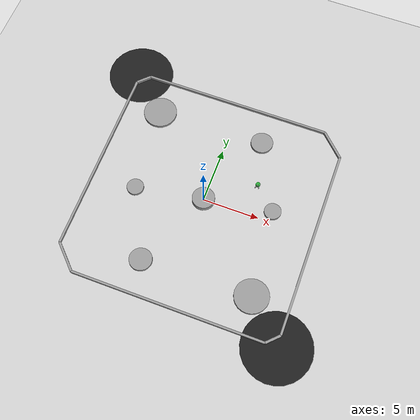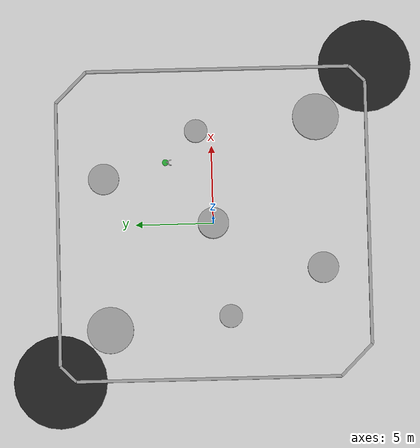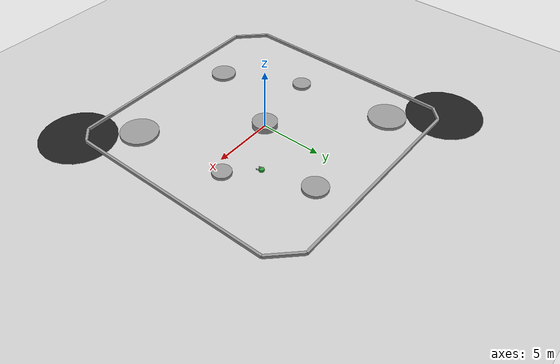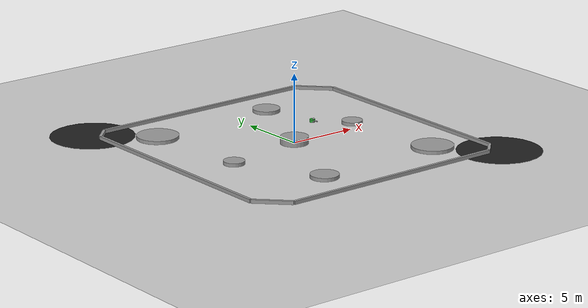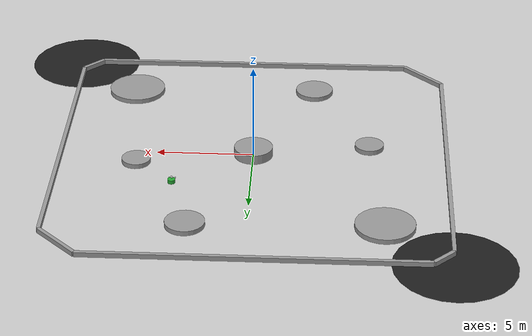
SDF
<?xml version="1.0"?>
<sdf version="1.4">
  <world name="default">
    <scene>
      <shadows>0</shadows>
    </scene>
    <!-- World Camera -->
    <gui>
      <camera name='camera_view'>
	<pose>0 0 35 0 1.57079 1.57079</pose>
      </camera>
    </gui>

    <!-- Ground -->
    <include>
      <uri>model://ground_plane</uri>
    </include>

    <!-- Global light source -->
     <include>
      <uri>model://sun</uri>
    </include>

    <!-- Robots Team A-->
    <include>
      <pose>4 3 0 0 0  -1.57079</pose>
      <name>TeamA_Bug_01</name>
      <uri>model://SDIC_Debug</uri>
    </include>

    <!-- Robots Team B-->

    <!-- Targets -->

    <!-- Wall -->
    <include>
        <uri>model://SDIC_Wall</uri>
    </include>

  </world>
</sdf>

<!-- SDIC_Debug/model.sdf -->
<sdf version='1.4'>
  <!-- Robot model -->
  <model name="SDIC_Bug">
    <!-- Body elements -->
    <link name='bug'>
      <pose>0 0 .1 0 0 0</pose>
      <inertial>
	<mass>5</mass>
	<inertia>
	  <ixx>1</ixx>
	  <ixy>0</ixy>
	  <ixz>0</ixz>
	  <iyy>1</iyy>
	  <iyz>0</iyz>
	  <izz>1</izz>
	</inertia>
      </inertial>
      <collision name='collision'>
	<geometry>
	  <cylinder>
	    <radius>.2</radius>
	    <length>.2</length>
	  </cylinder>
	</geometry>
	<surface>
	  <friction>
	    <ode>
	      <mu>0.1</mu>
	      <mu2>0</mu2>
	      <slip1>0.0</slip1>
	      <slip2>0.0</slip2>
	    </ode>
	  </friction>
	</surface>
      </collision>

      <visual name='visual'>
	<geometry>
	  <cylinder>
	    <radius>.2</radius>
	    <length>.2</length>
	  </cylinder>
	</geometry>
	<material>
	  <script>
	    <uri>file://media/materials/scripts/gazebo.material</uri>
	    <name>Gazebo/Green</name>
	  </script>
	</material>
      </visual>

      <!-- Sensors -->
      <!-- Proximity sensor -->
      <sensor name="laser" type="ray">
	<pose>0 0 0.075 0 0 0 </pose>
	<ray>
	<scan>
	  <horizontal>
	    <samples>32</samples>
	    <resolution>1</resolution>
	    <min_angle>-3</min_angle>
	    <max_angle>3</max_angle>
	  </horizontal>
	</scan>
	<range>
	  <min>0.201</min>
	  <max>2.0</max>
	  <resolution>0.01</resolution>
	</range>
	<noise>
	  <type>gaussian</type>
	  <mean>0.0</mean>
	  <stddev>0.02</stddev>
	</noise>
      </ray>
      <always_on>1</always_on>
      <update_rate>25</update_rate>
      <visualize>0</visualize>
      </sensor>

      <!-- Proximity sensor -->
      <sensor name="laser_target" type="ray">
	<pose>0 0 0.25 0 0 0 </pose>
	<ray>
	<scan>
	  <horizontal>
	    <samples>32</samples>
	    <resolution>1</resolution>
	    <min_angle>-3</min_angle>
	    <max_angle>3</max_angle>
	  </horizontal>
	</scan>
	<range>
	  <min>0.26</min>
	  <max>2.5</max>
	  <resolution>0.01</resolution>
	</range>
	<noise>
	  <type>gaussian</type>
	  <mean>0.0</mean>
	  <stddev>0.02</stddev>
	</noise>
      </ray>
      <always_on>1</always_on>
      <update_rate>25</update_rate>
      <visualize>0</visualize>
      </sensor>
      <!-- Proximity sensor Gripper -->
      <sensor name="laser_gripper" type="ray">
	<pose>0.19 0 -0.02 0 0 0 </pose>
	<ray>
	<scan>
	  <horizontal>
	    <samples>16</samples>
	    <resolution>1</resolution>
	    <min_angle>-1</min_angle>
	    <max_angle>1</max_angle>
	  </horizontal>
	</scan>
	<range>
	  <min>0.0155</min>
	  <max>0.2</max>
	  <resolution>0.01</resolution>
	</range>
	<noise>
	  <type>gaussian</type>
	  <mean>0.0</mean>
	  <stddev>0.005</stddev>
	</noise>
	</ray>
	<always_on>0</always_on>
	<update_rate>25</update_rate>
	<visualize>0</visualize>
      </sensor>

    </link>

    <include>
      <uri>model://SDIC_Camera</uri>
      <pose>0.125 0 0.25 0 0.57 0</pose>
    </include>

    <joint name="camera_joint" type="revolute">
      <parent>bug</parent>
      <child>SDIC_Camera::link</child>
      <axis>
	<limit>
	  <lower>0</lower>
	  <upper>0</upper>
	</limit>
	<xyz>0 0 1</xyz>
      </axis>
    </joint>

    <include>
      <uri>model://SDIC_Gripper</uri>
      <pose>0.17 0 .08 0 0 0</pose>
    </include>

    <joint name="gripper_joint" type="revolute">
      <parent>bug</parent>
      <child>SDIC_Gripper::palm</child>
      <axis>
	<limit>
	  <lower>0</lower>
	  <upper>0</upper>
	</limit>
	<xyz>0 0 1</xyz>
      </axis>
    </joint>

    <plugin name="model_push" filename="libvel_plugin.so" />
</model>
</sdf>

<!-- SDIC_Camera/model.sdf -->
<sdf version="1.4">
  <model name="SDIC_Camera">
    <link name="link">
      <pose>0 0 0 0 0 0</pose>
      <inertial>
        <mass>0.1</mass>
      </inertial>
      <collision name="collision">
        <geometry>
          <box>
            <size>0.1 0.1 0.1</size>
          </box>
        </geometry>
      </collision>
      <visual name="visual">
        <geometry>
          <box>
            <size>0.1 0.1 0.1</size>
          </box>
        </geometry>
      </visual>
      <sensor name="camera" type="camera">
        <camera>
          <horizontal_fov>1.047</horizontal_fov>
          <image>
            <width>32</width>
            <height>28</height>
          </image>
          <clip>
            <near>0.1</near>
            <far>100</far>
          </clip>
        </camera>
        <always_on>1</always_on>
        <update_rate>30</update_rate>
        <visualize>true</visualize>
      </sensor>
    </link>
  </model>
</sdf>

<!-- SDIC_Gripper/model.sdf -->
<sdf version="1.4">
  <model name="SDIC_Gripper">
    <link name="palm">
      <pose>0.0 0.0 0 0 0 0</pose>
      <inertial>
        <mass>0.002</mass>
      </inertial>
      <collision name="collision">
        <geometry>
          <box>
            <size>0.06 0.1 0.06</size>
          </box>
        </geometry>
        <surface>
	  <friction>
            <ode>
              <mu>0.1</mu>
              <mu2>0</mu2>
            </ode>
          </friction>
          <contact>
            <ode>
              <max_vel>0.0</max_vel>
            </ode>
          </contact>
        </surface>
      </collision>
      <visual name="visual">
        <geometry>
          <box>
            <size>0.06 0.1 0.06</size>
          </box>
        </geometry>
      </visual>
    </link>
    <link name="left_finger">
      <pose>0.05 0.1 0 0 0 -0.78539</pose>
      <inertial>
        <mass>0.001</mass>
	<inertia>
	  <ixx>0.001</ixx>
	  <ixy>0</ixy>
	  <ixz>0</ixz>
	  <iyy>0.001</iyy>
	  <iyz>0</iyz>
	  <izz>0.001</izz>
	</inertia>
      </inertial>
      <collision name="collision">
        <geometry>
          <box>
            <size>0.06 0.15 0.06</size>
          </box>
        </geometry>
        <surface>
          <friction>
            <ode>
              <mu>0.1</mu>
              <mu2>0</mu2>
            </ode>
          </friction>
          <contact>
            <ode>
              <max_vel>0.0</max_vel>
            </ode>
          </contact>
        </surface>
      </collision>
      <visual name="visual">
        <geometry>
          <box>
            <size>0.06 0.15 0.06</size>
          </box>
        </geometry>
      </visual>
    </link>
    <link name="left_finger_tip">
      <pose>0.168 0.15 0 0 0 1.5707</pose>
      <inertial>
        <mass>0.001</mass>
	<inertia>
	  <ixx>0.001</ixx>
	  <ixy>0</ixy>
	  <ixz>0</ixz>
	  <iyy>0.001</iyy>
	  <iyz>0</iyz>
	  <izz>0.001</izz>
	</inertia>
      </inertial>
      <collision name="collision">
        <geometry>
          <box>
            <size>0.06 0.1 0.06</size>
          </box>
        </geometry>
        <surface>
          <friction>
            <ode>
              <mu>0.1</mu>
              <mu2>0</mu2>
            </ode>
          </friction>
          <contact>
            <ode>
              <max_vel>0.0</max_vel>
            </ode>
          </contact>
        </surface>
      </collision>
      <visual name="visual">
        <geometry>
          <box>
            <size>0.06 0.1 0.06</size>
          </box>
        </geometry>
      </visual>
    </link>
    <link name="right_finger">
      <pose>0.05 -0.1 0 0 0 .78539</pose>
      <inertial>
        <mass>0.001</mass>
	<inertia>
	  <ixx>0.001</ixx>
	  <ixy>0</ixy>
	  <ixz>0</ixz>
	  <iyy>0.001</iyy>
	  <iyz>0</iyz>
	  <izz>0.001</izz>
	</inertia>
      </inertial>
      <collision name="collision">
        <geometry>
          <box>
            <size>0.06 0.15 0.06</size>
          </box>
        </geometry>
        <surface>
          <friction>
            <ode>
              <mu>0.1</mu>
              <mu2>0</mu2>
            </ode>
          </friction>
          <contact>
            <ode>
              <max_vel>0.0</max_vel>
            </ode>
          </contact>
        </surface>
      </collision>
      <visual name="visual">
        <geometry>
          <box>
            <size>0.06 0.15 0.06</size>
          </box>
        </geometry>
      </visual>
    </link>
    <link name="right_finger_tip">
      <pose>0.168 -0.15 0 0 0 1.5707</pose>
      <inertial>
        <mass>0.001</mass>
	<inertia>
	  <ixx>0.001</ixx>
	  <ixy>0</ixy>
	  <ixz>0</ixz>
	  <iyy>0.001</iyy>
	  <iyz>0</iyz>
	  <izz>0.001</izz>
	</inertia>
      </inertial>
      <collision name="collision">
        <geometry>
          <box>
            <size>0.06 0.1 0.06</size>
          </box>
        </geometry>
        <surface>
          <friction>
            <ode>
              <mu>0.1</mu>
              <mu2>0</mu2>
            </ode>
          </friction>
          <contact>
            <ode>
              <max_vel>0.0</max_vel>
            </ode>
          </contact>
        </surface>
      </collision>
      <visual name="visual">
        <geometry>
          <box>
            <size>0.06 0.1 0.06</size>
          </box>
        </geometry>
      </visual>
    </link>

    <joint name="left_finger" type="revolute">
      <pose>0 -0.075 0 0 0 0</pose>
      <child>left_finger</child>
      <parent>palm</parent>
      <axis>
        <limit><lower>-0.2</lower><upper>0.4</upper></limit>
        <xyz>0 0 -1</xyz>
      </axis>
    </joint>
    <joint name="left_finger_tip" type="revolute">
      <pose>0 0.05 0 0 0 0</pose>
      <child>left_finger_tip</child>
      <parent>left_finger</parent>
      <axis>
        <limit><lower>0</lower><upper>0.4</upper></limit>
        <xyz>0 0 -1</xyz>
      </axis>
    </joint>
    <joint name="right_finger" type="revolute">
      <pose>0 0.075 0 0 0 0</pose>
      <child>right_finger</child>
      <parent>palm</parent>
      <axis>
        <limit><lower>-0.2</lower><upper>0.4</upper></limit>
        <xyz>0 0 1</xyz>
      </axis>
    </joint>
    <joint name="right_finger_tip" type="revolute">
      <pose>0 0.05 0 0 0 0</pose>
      <child>right_finger_tip</child>
      <parent>right_finger</parent>
      <axis>
        <limit><lower>0</lower><upper>0.4</upper></limit>
        <xyz>0 0 1</xyz>
      </axis>
    </joint>

  </model>
</sdf>

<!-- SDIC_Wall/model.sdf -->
<sdf version='1.4'>
  <model name='Wall'>
    <link name='Wall_1'>
      <collision name='Wall_1_Collision'>
        <geometry>
          <box>
            <size>17 0.2 0.25</size>
          </box>
        </geometry>
        <pose>0 0 0.125 0 -0 0</pose>
      </collision>
      <visual name='Wall_1_Visual'>
        <pose>0 0 0.125 0 -0 0</pose>
        <geometry>
          <box>
            <size>17 0.2 0.25</size>
          </box>
        </geometry>
        <material>
          <script>
            <uri>file://media/materials/scripts/gazebo.material</uri>
            <name>Gazebo/Grey</name>
          </script>
        </material>
      </visual>
      <velocity_decay>
        <linear>0</linear>
        <angular>0</angular>
      </velocity_decay>
      <pose>-10 0.5 0 0 0 -1.5708</pose>
    </link>

    <link name='Wall_2'>
      <collision name='Wall_2_Collision'>
        <geometry>
          <box>
            <size>17 0.2 0.25</size>
          </box>
        </geometry>
        <pose>0 0 0.125 0 -0 0</pose>
      </collision>
      <visual name='Wall_2_Visual'>
        <pose>0 0 0.125 0 -0 0</pose>
        <geometry>
          <box>
            <size>17 0.2 0.25</size>
          </box>
         </geometry>
        <material>
          <script>
            <uri>file://media/materials/scripts/gazebo.material</uri>
            <name>Gazebo/Grey</name>
          </script>
        </material>
      </visual>
      <velocity_decay>
        <linear>0</linear>
        <angular>0</angular>
      </velocity_decay>
      <pose>0.5 -10 0 0 0 0</pose>
    </link>

 <link name='Wall_3'>
      <collision name='Wall_3_Collision'>
        <geometry>
          <box>
            <size>17 0.2 0.25</size>
          </box>
        </geometry>
        <pose>0 0 0.125 0 -0 0</pose>
      </collision>
      <visual name='Wall_3_Visual'>
        <pose>0 0 0.125 0 -0 0</pose>
        <geometry>
          <box>
            <size>17 0.2 0.25</size>
          </box>
        </geometry>
        <material>
          <script>
            <uri>file://media/materials/scripts/gazebo.material</uri>
            <name>Gazebo/Grey</name>
          </script>
        </material>
      </visual>
      <velocity_decay>
        <linear>0</linear>
        <angular>0</angular>
      </velocity_decay>
      <pose>10 -0.5 0 0 0 -1.5708</pose>
    </link>

    <link name='Wall_4'>
      <collision name='Wall_4_Collision'>
        <geometry>
          <box>
            <size>17 0.2 0.25</size>
          </box>
        </geometry>
        <pose>0 0 0.125 0 -0 0</pose>
      </collision>
      <visual name='Wall_4_Visual'>
        <pose>0 0 0.125 0 -0 0</pose>
        <geometry>
          <box>
            <size>17 0.2 0.25</size>
          </box>
        </geometry>
        <material>
          <script>
            <uri>file://media/materials/scripts/gazebo.material</uri>
            <name>Gazebo/Grey</name>
          </script>
        </material>
      </visual>
      <velocity_decay>
        <linear>0</linear>
        <angular>0</angular>
      </velocity_decay>
      <pose>-0.5 10 0 0 0 0</pose>
    </link>

    <link name='Wall_5'>
      <collision name='Wall_5_Collision'>
        <geometry>
          <box>
            <size> 2.828427 0.2 0.25</size>
          </box>
        </geometry>
        <pose>0 0 0.125 0 -0 0</pose>
      </collision>
      <visual name='Wall_5_Visual'>
        <pose>0 0 0.125 0 -0 0</pose>
        <geometry>
          <box>
            <size>2.828427 0.2 0.25</size>
          </box>
        </geometry>
        <material>
          <script>
            <uri>file://media/materials/scripts/gazebo.material</uri>
            <name>Gazebo/Grey</name>
          </script>
        </material>
      </visual>
      <velocity_decay>
        <linear>0</linear>
        <angular>0</angular>
      </velocity_decay>
      <pose>9 9 0 0 0 -0.78539</pose>
    </link>

    <link name='Wall_6'>
      <collision name='Wall_6_Collision'>
        <geometry>
          <box>
            <size> 2.828427 0.2 0.25</size>
          </box>
        </geometry>
        <pose>0 0 0.125 0 -0 0</pose>
      </collision>
      <visual name='Wall_6_Visual'>
        <pose>0 0 0.125 0 -0 0</pose>
        <geometry>
          <box>
            <size>2.828427 0.2 0.25</size>
          </box>
        </geometry>
        <material>
          <script>
            <uri>file://media/materials/scripts/gazebo.material</uri>
            <name>Gazebo/Grey</name>
          </script>
        </material>
      </visual>
      <velocity_decay>
        <linear>0</linear>
        <angular>0</angular>
      </velocity_decay>
      <pose>-9 -9 0 0 0 -0.78539</pose>
    </link>
<link name='Wall_6'>
      <collision name='Wall_6_Collision'>
        <geometry>
          <box>
            <size> 2.828427 0.2 0.25</size>
          </box>
        </geometry>
        <pose>0 0 0.125 0 -0 0</pose>
      </collision>
      <visual name='Wall_6_Visual'>
        <pose>0 0 0.125 0 -0 0</pose>
        <geometry>
          <box>
            <size>2.828427 0.2 0.25</size>
          </box>
        </geometry>
        <material>
          <script>
            <uri>file://media/materials/scripts/gazebo.material</uri>
            <name>Gazebo/Grey</name>
          </script>
        </material>
      </visual>
      <velocity_decay>
        <linear>0</linear>
        <angular>0</angular>
      </velocity_decay>
      <pose>-9 -9 0 0 0 -0.78539</pose>
    </link>

    <link name='Wall_7'>
      <collision name='Wall_7_Collision'>
        <geometry>
          <box>
            <size> 1.414215 0.2 0.25</size>
          </box>
        </geometry>
        <pose>0 0 0.125 0 -0 0</pose>
      </collision>
      <visual name='Wall_7_Visual'>
        <pose>0 0 0.125 0 -0 0</pose>
        <geometry>
          <box>
            <size>1.414215 0.2 0.25</size>
          </box>
        </geometry>
        <material>
          <script>
            <uri>file://media/materials/scripts/gazebo.material</uri>
            <name>Gazebo/Grey</name>
          </script>
        </material>
      </visual>
      <velocity_decay>
        <linear>0</linear>
        <angular>0</angular>
      </velocity_decay>
      <pose>-9.5 9.5 0 0 0 0.78539</pose>
    </link>

    <link name='Wall_8'>
      <collision name='Wall_8_Collision'>
        <geometry>
          <box>
            <size> 1.414215 0.2 0.25</size>
          </box>
        </geometry>
        <pose>0 0 0.125 0 -0 0</pose>
      </collision>
      <visual name='Wall_7_Visual'>
        <pose>0 0 0.125 0 -0 0</pose>
        <geometry>
          <box>
            <size>1.414215 0.2 0.25</size>
          </box>
        </geometry>
        <material>
          <script>
            <uri>file://media/materials/scripts/gazebo.material</uri>
            <name>Gazebo/Grey</name>
          </script>
        </material>
      </visual>
      <velocity_decay>
        <linear>0</linear>
        <angular>0</angular>
      </velocity_decay>
      <pose> 9.5 -9.5 0 0 0 0.78539</pose>
    </link>

 <link name='Home_A'>
   <visual name='Home_A_Visual'>
        <pose>0 0 0.002 0 0 0</pose>
        <geometry>
         <cylinder>
            <radius> 3 </radius>
	    <length> 0.0001 </length>
          </cylinder>
        </geometry>
        <material>
          <script>
            <uri>file://media/materials/scripts/gazebo.material</uri>
	   <name>Gazebo/Black</name>
          </script>
        </material>
      </visual>
      <velocity_decay>
        <linear>0</linear>
        <angular>0</angular>
      </velocity_decay>
      <pose>-10 10 0 0 0 0</pose>
    </link>

    <link name='Home_B'>
      <visual name='Home_B_Visual'>
        <pose>0 0 0.002 0 0 0</pose>
        <geometry>
	  <cylinder>
            <radius> 3 </radius>
	    <length> 0.0001 </length>
          </cylinder>
        </geometry>
        <material>
          <script>
            <uri>file://media/materials/scripts/gazebo.material</uri>
	  <name>Gazebo/Black</name>
          </script>
        </material>
      </visual>
      <velocity_decay>
        <linear>0</linear>
        <angular>0</angular>
      </velocity_decay>
      <pose>10 -10 0 0 0 0</pose>
    </link>

    <link name='Obstacle_0'>
      <collision name='Obstacle_0_Collision'>
        <geometry>
          <cylinder>
            <radius> 1 </radius>
	    <length> .5 </length>
          </cylinder>
        </geometry>
        <pose>0 0 0.25 0 -0 0</pose>
      </collision>
      <visual name='Obstacle_0_Visual'>
        <pose>0 0 0.25 0 -0 0</pose>
        <geometry>
         <cylinder>
            <radius> 1 </radius>
	    <length> .5 </length>
          </cylinder>
	</geometry>
        <material>
          <script>
            <uri>file://media/materials/scripts/gazebo.material</uri>
            <name>Gazebo/Grey</name>
          </script>
        </material>
      </visual>
      <velocity_decay>
        <linear>0</linear>
        <angular>0</angular>
      </velocity_decay>
      <pose>0 0 0 0 0 0</pose>
    </link>

 <link name='Obstacle_1'>
      <collision name='Obstacle_1_Collision'>
        <geometry>
          <cylinder>
            <radius> 1.5 </radius>
	    <length> 0.25 </length>
          </cylinder>
        </geometry>
        <pose>0 0 0.125 0 -0 0</pose>
      </collision>
      <visual name='Obstacle_1_Visual'>
        <pose>0 0 0.125 0 -0 0</pose>
        <geometry>
         <cylinder>
            <radius> 1.5 </radius>
	    <length> 0.25 </length>
          </cylinder>
	</geometry>
        <material>
          <script>
            <uri>file://media/materials/scripts/gazebo.material</uri>
            <name>Gazebo/Grey</name>
          </script>
        </material>
      </visual>
      <velocity_decay>
        <linear>0</linear>
        <angular>0</angular>
      </velocity_decay>
      <pose> 6.75 -6.75 0 0 0 0</pose>
    </link>
   <link name='Obstacle_2'>
      <collision name='Obstacle_2_Collision'>
        <geometry>
          <cylinder>
            <radius> 1.5 </radius>
	    <length> 0.25 </length>
          </cylinder>
        </geometry>
        <pose>0 0 0.125 0 -0 0</pose>
      </collision>
      <visual name='Obstacle_2_Visual'>
        <pose>0 0 0.125 0 -0 0</pose>
        <geometry>
         <cylinder>
            <radius> 1.5 </radius>
	    <length> 0.25 </length>
          </cylinder>
	</geometry>
        <material>
          <script>
            <uri>file://media/materials/scripts/gazebo.material</uri>
            <name>Gazebo/Grey</name>
          </script>
        </material>
      </visual>
      <velocity_decay>
        <linear>0</linear>
        <angular>0</angular>
      </velocity_decay>
      <pose> -6.75 6.75 0 0 0 0</pose>
    </link>

    <link name='Obstacle_3'>
      <collision name='Obstacle_3_Collision'>
        <geometry>
          <cylinder>
            <radius> 1 </radius>
	    <length> 0.25 </length>
          </cylinder>
        </geometry>
        <pose>0 0 0.125 0 -0 0</pose>
      </collision>
      <visual name='Obstacle_3_Visual'>
        <pose>0 0 0.125 0 -0 0</pose>
        <geometry>
         <cylinder>
            <radius> 1 </radius>
	    <length> 0.25 </length>
          </cylinder>
	</geometry>
        <material>
          <script>
            <uri>file://media/materials/scripts/gazebo.material</uri>
            <name>Gazebo/Grey</name>
          </script>
        </material>
      </visual>
      <velocity_decay>
        <linear>0</linear>
        <angular>0</angular>
      </velocity_decay>
      <pose> 3 7 0 0 0 0</pose>
    </link>

 <link name='Obstacle_4'>
      <collision name='Obstacle_4_Collision'>
        <geometry>
          <cylinder>
            <radius> 1 </radius>
	    <length> 0.25 </length>
          </cylinder>
        </geometry>
        <pose>0 0 0.125 0 -0 0</pose>
      </collision>
      <visual name='Obstacle_4_Visual'>
        <pose>0 0 0.125 0 -0 0</pose>
        <geometry>
         <cylinder>
            <radius> 1 </radius>
	    <length> 0.25 </length>
          </cylinder>
	</geometry>
        <material>
          <script>
            <uri>file://media/materials/scripts/gazebo.material</uri>
            <name>Gazebo/Grey</name>
          </script>
        </material>
      </visual>
      <velocity_decay>
        <linear>0</linear>
        <angular>0</angular>
      </velocity_decay>
      <pose> -3 -7 0 0 0 0</pose>
    </link>

    <link name='Obstacle_5'>
      <collision name='Obstacle_5_Collision'>
        <geometry>
          <cylinder>
            <radius> .75 </radius>
	    <length> 0.25 </length>
          </cylinder>
        </geometry>
        <pose>0 0 0.125 0 -0 0</pose>
      </collision>
      <visual name='Obstacle_5_Visual'>
        <pose>0 0 0.125 0 -0 0</pose>
        <geometry>
         <cylinder>
            <radius> .75 </radius>
	    <length> 0.25 </length>
          </cylinder>
	</geometry>
        <material>
          <script>
            <uri>file://media/materials/scripts/gazebo.material</uri>
            <name>Gazebo/Grey</name>
          </script>
        </material>
      </visual>
      <velocity_decay>
        <linear>0</linear>
        <angular>0</angular>
      </velocity_decay>
      <pose> 6 1 0 0 0 0</pose>
    </link>

 <link name='Obstacle_6'>
      <collision name='Obstacle_6_Collision'>
        <geometry>
          <cylinder>
            <radius> .75 </radius>
	    <length> 0.25 </length>
          </cylinder>
        </geometry>
        <pose>0 0 0.125 0 -0 0</pose>
      </collision>
      <visual name='Obstacle_6_Visual'>
        <pose>0 0 0.125 0 -0 0</pose>
        <geometry>
         <cylinder>
            <radius> .75 </radius>
	    <length> 0.25 </length>
          </cylinder>
	</geometry>
        <material>
          <script>
            <uri>file://media/materials/scripts/gazebo.material</uri>
            <name>Gazebo/Grey</name>
          </script>
        </material>
      </visual>
      <velocity_decay>
        <linear>0</linear>
        <angular>0</angular>
      </velocity_decay>
      <pose> -6 -1 0 0 0 0</pose>
    </link>

    <static>1</static>
  </model>
</sdf>
